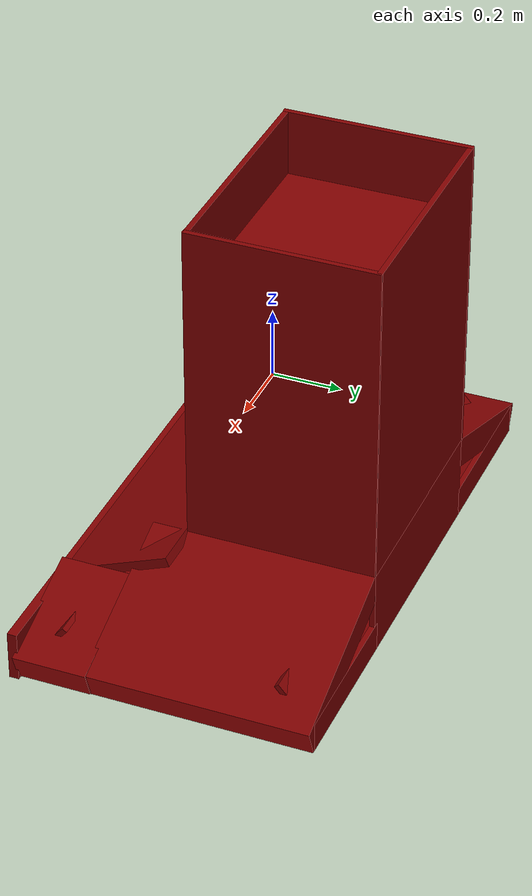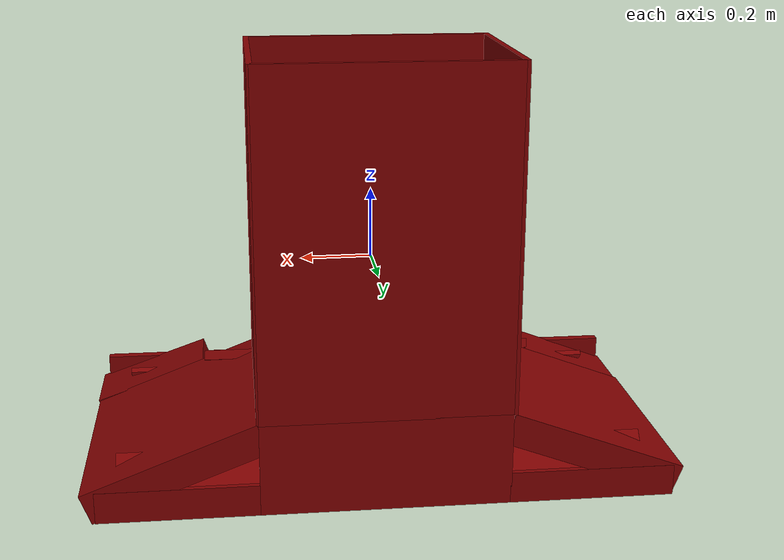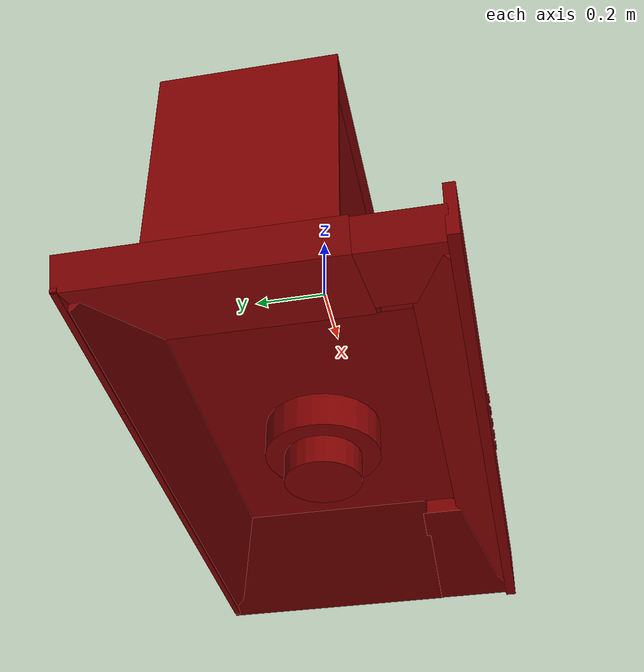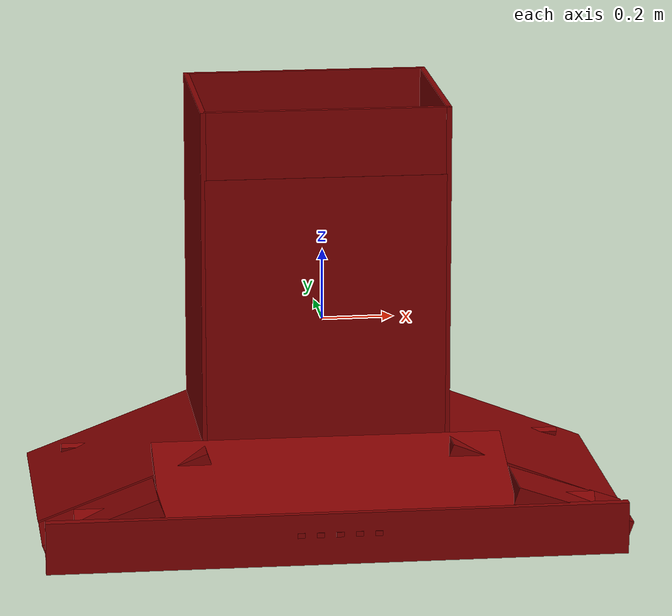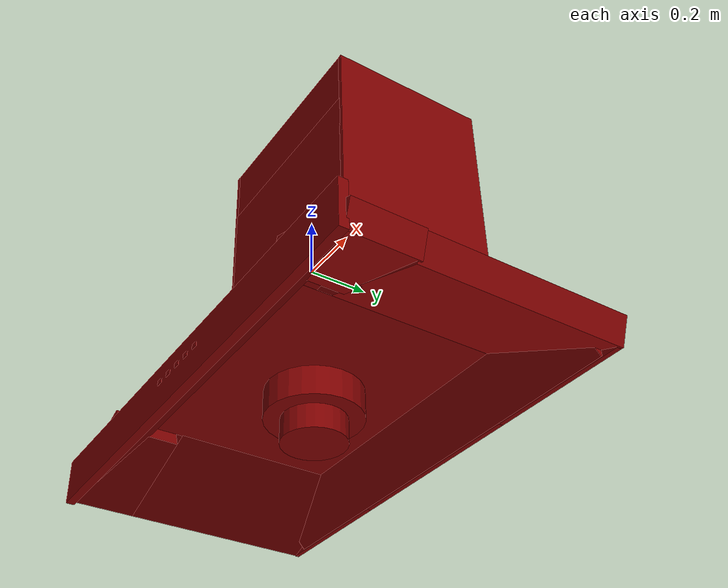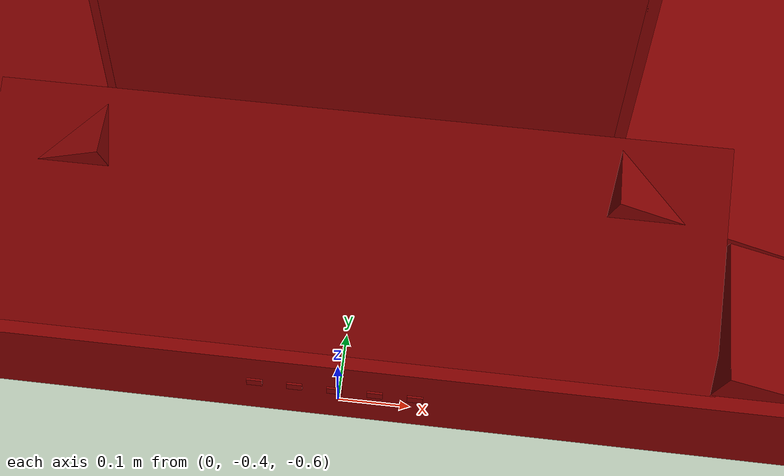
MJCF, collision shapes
<?xml version='1.0' encoding='UTF-8'?>
<mujoco model="model">
  <compiler angle="radian"/>
  <asset>
    <mesh file="visuals/Body001.obj" name="Body001_vis"/>
    <mesh file="visuals/Button001.obj" name="Button001_vis"/>
    <mesh file="visuals/Button002.obj" name="Button002_vis"/>
    <mesh file="visuals/Button003.obj" name="Button003_vis"/>
    <mesh file="visuals/Button004.obj" name="Button004_vis"/>
    <mesh file="visuals/Button005.obj" name="Button005_vis"/>
    <texture file="visuals/T_BC001.png" name="Body001_material" type="2d"/>
    <material name="Body001_material" rgba="1 1 1 1.0" texture="Body001_material" shininess="1" specular="1"/>
    <texture file="visuals/T_BC001.png" name="Button001_material" type="2d"/>
    <material name="Button001_material" rgba="1 1 1 1.0" texture="Button001_material" shininess="0.4472135901451111" specular="0.3103448502657381"/>
    <texture file="visuals/T_BC001.png" name="Button002_material" type="2d"/>
    <material name="Button002_material" rgba="1 1 1 1.0" texture="Button002_material" shininess="0.4472135901451111" specular="0.3103448502657381"/>
    <texture file="visuals/T_BC001.png" name="Button003_material" type="2d"/>
    <material name="Button003_material" rgba="1 1 1 1.0" texture="Button003_material" shininess="0.4472135901451111" specular="0.3103448502657381"/>
    <texture file="visuals/T_BC001.png" name="Button004_material" type="2d"/>
    <material name="Button004_material" rgba="1 1 1 1.0" texture="Button004_material" shininess="0.4472135901451111" specular="0.3103448502657381"/>
    <texture file="visuals/T_BC001.png" name="Button005_material" type="2d"/>
    <material name="Button005_material" rgba="1 1 1 1.0" texture="Button005_material" shininess="0.4472135901451111" specular="0.3103448502657381"/>
  </asset>
  <default>
    <default class="visual">
      <geom conaffinity="0" contype="0" group="1" type="mesh"/>
    </default>
    <default class="collision">
      <geom group="0" rgba="0.5 0 0 0.5"/>
    </default>
    <default class="spawn">
      <geom group="0" rgba="1 1 1 0.5" contype="0" conaffinity="0"/>
      <site group="0" rgba="1 1 1 0.5"/>
    </default>
    <default class="region">
      <geom group="1" conaffinity="0" contype="0" rgba="0 1 0 0"/>
    </default>
  </default>
  <worldbody>
    <body>
      <body name="object">
        <geom mesh="Body001_vis" type="mesh" solimp="0.998 0.998 0.001" solref="0.001 1" density="100" friction="0.95 0.3 0.1" class="visual" material="Body001_material"/>
        <geom class="collision" type="box" pos="-0.342471 0.164870 0.148648" size="0.0077325101010501385 0.2723582088947296 0.4747554361820221" quat="1.0 0.0 0.0 0.0"/>
        <geom class="collision" type="box" pos="0.342351 0.164870 0.148648" size="0.0077325101010501385 0.2723582088947296 0.4747554361820221" quat="1.0 0.0 0.0 0.0"/>
        <geom class="collision" type="box" pos="0.002151 0.429882 0.148648" size="0.0077325101010501385 0.34199488162994385 0.4747554361820221" quat="0.7071067094802856 0.0 0.0 0.7071068286895752"/>
        <geom class="collision" type="box" pos="0.002151 -0.098899 0.148648" size="0.0077325101010501385 0.34199488162994385 0.4747554361820221" quat="0.7071067094802856 0.0 0.0 0.7071068286895752"/>
        <geom class="collision" type="box" pos="-0.000678 0.164870 0.053176" size="0.3382261395454407 0.2723582088947296 0.37928301095962524" quat="1.0 0.0 0.0 0.0"/>
        <geom class="collision" type="box" pos="-0.568056 0.113975 -0.455035" size="0.2537936270236969 0.32325324416160583 0.044183164834976196" quat="0.9839345216751099 0.0 -0.17852969467639923 0.0"/>
        <geom class="collision" type="box" pos="0.568578 0.113975 -0.454198" size="0.2537936270236969 0.32325324416160583 0.044183164834976196" quat="0.9832040071487427 0.0 0.18250983953475952 0.0"/>
        <geom class="collision" type="box" pos="-0.001327 -0.418410 -0.512423" size="0.8091775178909302 0.014038885943591595 0.07325407862663269" quat="1.0 0.0 0.0 0.0"/>
        <geom class="collision" type="box" pos="-0.001327 -0.263125 -0.393338" size="0.49430957436561584 0.014038885943591595 0.17198629677295685" quat="0.8291825652122498 -0.5589778423309326 -0.0 0.0"/>
        <geom class="collision" type="box" pos="-0.644790 -0.305402 -0.486542" size="0.1708812415599823 0.10689277201890945 0.04164240136742592" quat="0.9839345216751099 0.0 -0.17852969467639923 0.0"/>
        <geom class="collision" type="box" pos="0.650661 -0.305402 -0.485629" size="0.1708812415599823 0.10689277201890945 0.04164240136742592" quat="0.9860060214996338 0.0 0.1667097806930542 0.0"/>
        <geom class="collision" type="box" pos="0.002151 0.429882 -0.454338" size="0.0077325101010501385 0.34199488162994385 0.13075602054595947" quat="0.7071067094802856 0.0 0.0 0.7071068286895752"/>
        <geom class="collision" type="box" pos="-0.565526 0.429882 -0.541033" size="0.0077325147576630116 0.22901563346385956 0.04406147450208664" quat="0.7071067094802856 0.0 0.0 0.7071068286895752"/>
        <geom class="collision" type="box" pos="0.553064 0.429882 -0.541033" size="0.0077325147576630116 0.22901563346385956 0.04406147450208664" quat="0.7071067094802856 0.0 0.0 0.7071068286895752"/>
        <geom class="collision" type="box" pos="0.002151 0.366293 -0.513102" size="0.007732512429356575 0.7281750440597534 0.08869940042495728" quat="0.6637459397315979 0.24380595982074738 -0.2438059002161026 0.6637459397315979"/>
        <geom class="collision" type="box" pos="0.002151 -0.358256 -0.513102" size="0.007732512429356575 0.7281750440597534 0.08869940042495728" quat="0.2463184893131256 0.6628175973892212 -0.662817656993866 0.2463184893131256"/>
        <geom class="collision" type="box" pos="-0.000678 0.011008 -0.450840" size="0.4353142976760864 0.3177357017993927 4.052615258842707e-05" quat="1.0 0.0 0.0 0.0"/>
        <geom class="collision" type="cylinder" pos="0.004817 0.005072 -0.495060" size="0.15065018832683563 0.04933783784508705" quat="1.0 0.0 0.0 0.0"/>
        <geom class="collision" type="cylinder" pos="0.004817 0.005072 -0.582486" size="0.10063406080007553 0.039486344903707504" quat="1.0 0.0 0.0 0.0"/>
        <body name="Button001">
          <joint axis="0.0 1.0 0.0" pos="-0.108308 -0.432030 -0.498576" limited="true" name="Button001_joint" range="0.0 0.003" type="slide" damping="1" frictionloss="1" armature=".01" stiffness="0.05"/>
          <geom mesh="Button001_vis" type="mesh" solimp="0.998 0.998 0.001" solref="0.001 1" density="100" friction="0.95 0.3 0.1" class="visual" material="Button001_material"/>
          <geom class="collision" type="box" pos="-0.108313 -0.436135 -0.498591" size="0.010646537877619267 0.0014790649292990565 0.006981220096349716" quat="1.0 0.0 0.0 0.0"/>
        </body>
        <body name="Button002">
          <joint axis="0.0 1.0 0.0" pos="-0.054263 -0.432030 -0.498576" limited="true" name="Button002_joint" range="0.0 0.003" type="slide" damping="1" frictionloss="1" armature=".01" stiffness="0.05"/>
          <geom mesh="Button002_vis" type="mesh" solimp="0.998 0.998 0.001" solref="0.001 1" density="100" friction="0.95 0.3 0.1" class="visual" material="Button002_material"/>
          <geom class="collision" type="box" pos="-0.054381 -0.436135 -0.498591" size="0.010646537877619267 0.0014790649292990565 0.006981220096349716" quat="1.0 0.0 0.0 0.0"/>
        </body>
        <body name="Button003">
          <joint axis="0.0 1.0 0.0" pos="-0.000218 -0.432030 -0.498576" limited="true" name="Button003_joint" range="0.0 0.003" type="slide" damping="1" frictionloss="1" armature=".01" stiffness="0.05"/>
          <geom mesh="Button003_vis" type="mesh" solimp="0.998 0.998 0.001" solref="0.001 1" density="100" friction="0.95 0.3 0.1" class="visual" material="Button003_material"/>
          <geom class="collision" type="box" pos="-0.000223 -0.436135 -0.498591" size="0.010646537877619267 0.0014790649292990565 0.006981220096349716" quat="1.0 0.0 0.0 0.0"/>
        </body>
        <body name="Button004">
          <joint axis="0.0 1.0 0.0" pos="0.053753 -0.432030 -0.498576" limited="true" name="Button004_joint" range="0.0 0.003" type="slide" damping="1" frictionloss="1" armature=".01" stiffness="0.05"/>
          <geom mesh="Button004_vis" type="mesh" solimp="0.998 0.998 0.001" solref="0.001 1" density="100" friction="0.95 0.3 0.1" class="visual" material="Button004_material"/>
          <geom class="collision" type="box" pos="0.053825 -0.436135 -0.498591" size="0.010646537877619267 0.0014790649292990565 0.006981220096349716" quat="1.0 0.0 0.0 0.0"/>
        </body>
        <body name="Button005">
          <joint axis="0.0 1.0 0.0" pos="0.107724 -0.432030 -0.498576" limited="true" name="Button005_joint" range="0.0 0.003" type="slide" damping="1" frictionloss="1" armature=".01" stiffness="0.05"/>
          <geom mesh="Button005_vis" type="mesh" solimp="0.998 0.998 0.001" solref="0.001 1" density="100" friction="0.95 0.3 0.1" class="visual" material="Button005_material"/>
          <geom class="collision" type="box" pos="0.107715 -0.436135 -0.498591" size="0.010646537877619267 0.0014790649292990565 0.006981220096349716" quat="1.0 0.0 0.0 0.0"/>
        </body>
        <geom class="region" name="reg_main" type="box" pos="0.0015594999999999914 -0.0025290000000000035 -0.0010469999999999646" size="0.8089455000000001 0.437155 0.622357"/>
      </body>
    </body>
  </worldbody>
  <actuator>
    <motor name="Button001_joint_actuator" joint="Button001_joint" gear="0.5"/>
    <motor name="Button002_joint_actuator" joint="Button002_joint" gear="0.5"/>
    <motor name="Button003_joint_actuator" joint="Button003_joint" gear="0.5"/>
    <motor name="Button004_joint_actuator" joint="Button004_joint" gear="0.5"/>
    <motor name="Button005_joint_actuator" joint="Button005_joint" gear="0.5"/>
  </actuator>
</mujoco>
